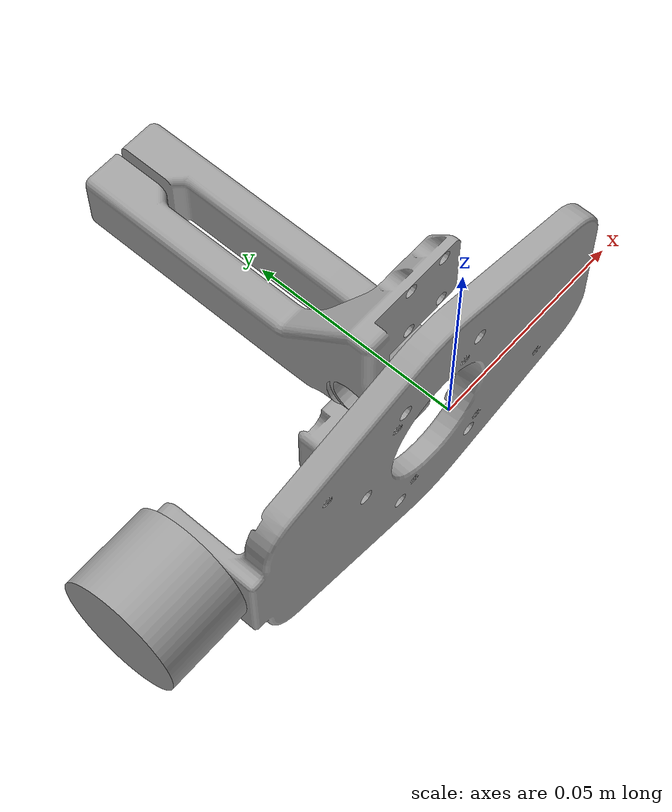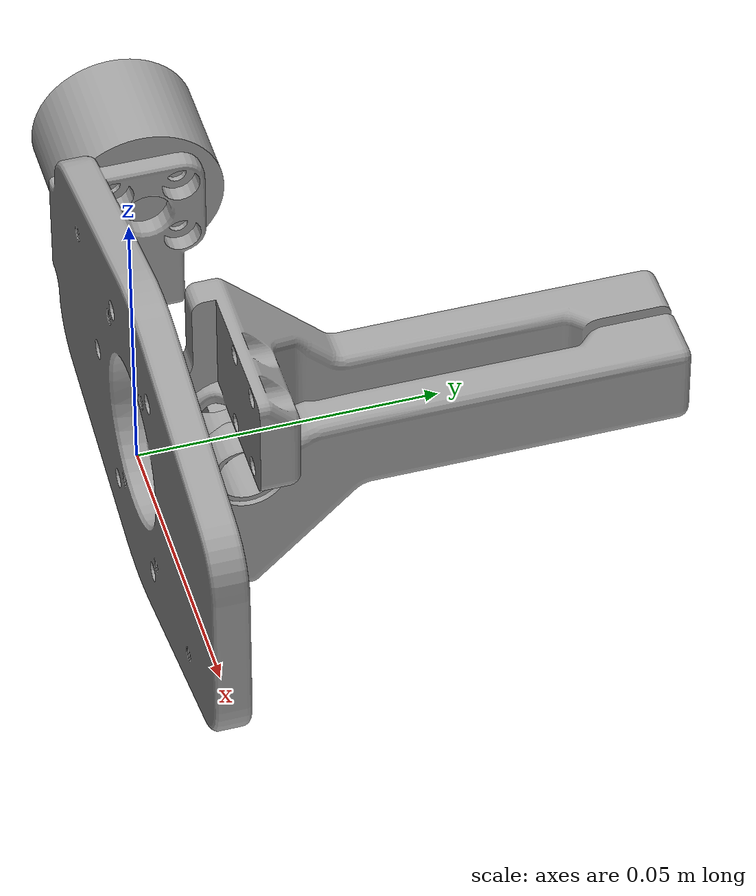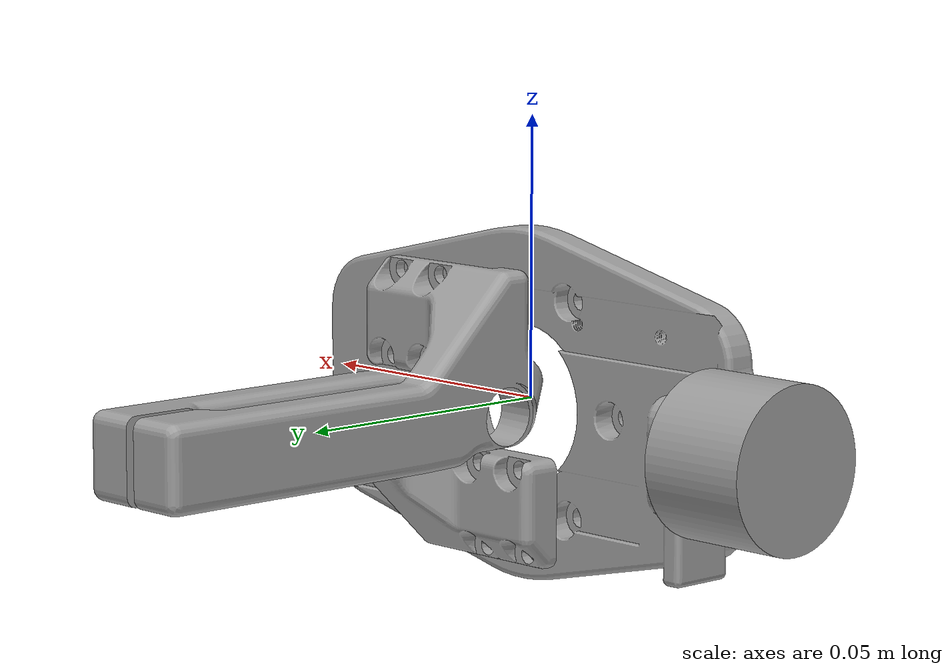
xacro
<?xml version="1.0" ?>
<robot name="grip_urdf1" xmlns:xacro="http://www.ros.org/wiki/xacro">

<xacro:include filename="$(find grip_urdf1_description)/urdf/materials.xacro" />
<xacro:include filename="$(find grip_urdf1_description)/urdf/grip_urdf1.trans" />
<xacro:include filename="$(find grip_urdf1_description)/urdf/grip_urdf1.gazebo" />
<xacro:arg name="tf_prefix" default=""/>
<link name="$(arg tf_prefix)/base_link">
  <inertial>
    <origin rpy="0 0 0" xyz="-0.006946610886831786 0.0035780166273227205 -0.0003164257368845329"/>
    <mass value="0.21004662945285396"/>
    <inertia ixx="5.5e-05" ixy="7e-06" ixz="-5e-06" iyy="0.000256" iyz="1e-06" izz="0.000206"/>
  </inertial>
  <visual>
    <origin rpy="0 0 0" xyz="0 0 0"/>
    <geometry>
      <mesh filename="package://grip_urdf1_description/meshes/base_link_grip_urdf1 v0_Body1_base_link.stl" scale="0.001 0.001 0.001"/>
    </geometry>
    <material name="Steel - Satin">
      <color rgba="0.6274509803921569 0.6274509803921569 0.6274509803921569 1.0"/>
    </material>
  </visual>
  <collision>
    <origin rpy="0 0 0" xyz="0 0 0"/>
    <geometry>
      <mesh filename="package://grip_urdf1_description/meshes/base_link.stl" scale="0.001 0.001 0.001"/>
    </geometry>
  </collision>
</link>

<link name="$(arg tf_prefix)/motor_1">
  <inertial>
    <origin rpy="0 0 0" xyz="-0.010000306616649128 3.469446951953614e-18 1.4668454062330035e-17"/>
    <mass value="0.09667308913626513"/>
    <inertia ixx="9e-06" ixy="0.0" ixz="0.0" iyy="8e-06" iyz="0.0" izz="8e-06"/>
  </inertial>
  <visual>
    <origin rpy="0 0 0" xyz="0.057167 -0.016 0.0"/>
    <geometry>
      <mesh filename="package://grip_urdf1_description/meshes/motor_1_grip_urdf1 v0_Body1_motor_1.stl" scale="0.001 0.001 0.001"/>
    </geometry>
    <material name="Steel - Satin">
      <color rgba="0.6274509803921569 0.6274509803921569 0.6274509803921569 1.0"/>
    </material>
  </visual>
  <collision>
    <origin rpy="0 0 0" xyz="0.057167 -0.016 0.0"/>
    <geometry>
      <mesh filename="package://grip_urdf1_description/meshes/motor_1.stl" scale="0.001 0.001 0.001"/>
    </geometry>
  </collision>
</link>

<link name="$(arg tf_prefix)/finger_1">
  <inertial>
    <origin rpy="0 0 0" xyz="0.0008908942564820792 0.0264560567515969 0.005010079496025799"/>
    <mass value="0.10777043072488268"/>
    <inertia ixx="7.2e-05" ixy="7e-06" ixz="-3e-06" iyy="1.2e-05" iyz="1.3e-05" izz="7e-05"/>
  </inertial>
  <visual>
    <origin rpy="0 0 0" xyz="0.005667 -0.016 0.0"/>
    <geometry>
      <mesh filename="package://grip_urdf1_description/meshes/finger_1_grip_urdf1 v0_Body1_finger_1.stl" scale="0.001 0.001 0.001"/>
    </geometry>
    <material name="Steel - Satin">
      <color rgba="0.6274509803921569 0.6274509803921569 0.6274509803921569 1.0"/>
    </material>
  </visual>
  <collision>
    <origin rpy="0 0 0" xyz="0.005667 -0.016 0.0"/>
    <geometry>
      <mesh filename="package://grip_urdf1_description/meshes/finger_1.stl" scale="0.001 0.001 0.001"/>
    </geometry>
  </collision>
</link>

<link name="$(arg tf_prefix)/finger_2">
  <inertial>
    <origin rpy="0 0 0" xyz="-0.0008915074897803414 0.0264560567515969 -0.005010079496025876"/>
    <mass value="0.10777043072488268"/>
    <inertia ixx="7.2e-05" ixy="-7e-06" ixz="-3e-06" iyy="1.2e-05" iyz="-1.3e-05" izz="7e-05"/>
  </inertial>
  <visual>
    <origin rpy="0 0 0" xyz="-0.003833 -0.016 0.0"/>
    <geometry>
      <mesh filename="package://grip_urdf1_description/meshes/finger_2_grip_urdf1 v0_Body1_finger_2.stl" scale="0.001 0.001 0.001"/>
    </geometry>
    <material name="Steel - Satin">
      <color rgba="0.6274509803921569 0.6274509803921569 0.6274509803921569 1.0"/>
    </material>
  </visual>
  <collision>
    <origin rpy="0 0 0" xyz="-0.003833 -0.016 0.0"/>
    <geometry>
      <mesh filename="package://grip_urdf1_description/meshes/finger_2.stl" scale="0.001 0.001 0.001"/>
    </geometry>
  </collision>
</link>

<joint name="Rigid1" type="fixed">
  <origin rpy="0 0 0" xyz="-0.057167 0.016 0.0"/>
  <parent link="$(arg tf_prefix)/base_link"/>
  <child link="$(arg tf_prefix)/motor_1"/>
</joint>

<joint name="Slider2" type="prismatic">
  <origin rpy="0 0 0" xyz="-0.005667 0.016 0.0"/>
  <parent link="$(arg tf_prefix)/base_link"/>
  <child link="$(arg tf_prefix)/finger_1"/>
  <axis xyz="1.0 0.0 -0.0"/>
  <limit effort="100" lower="-0.035" upper="0.0025" velocity="100"/>
</joint>

<joint name="Slider3" type="prismatic">
  <origin rpy="0 0 0" xyz="0.003833 0.016 0.0"/>
  <parent link="$(arg tf_prefix)/base_link"/>
  <child link="$(arg tf_prefix)/finger_2"/>
  <axis xyz="1.0 0.0 -0.0"/>
  <limit effort="100" lower="0.0" upper="0.0" velocity="100"/>
  <mimic joint="Slider2" multiplier="-1.0"/>
</joint>

</robot>

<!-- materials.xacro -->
<robot name="grip_urdf1" xmlns:xacro="http://www.ros.org/wiki/xacro" >
<material name="Steel - Satin">
  <color rgba="0.6274509803921569 0.6274509803921569 0.6274509803921569 1.0"/>
</material>
</robot>

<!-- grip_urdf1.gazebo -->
<robot name="grip_urdf1" xmlns:xacro="http://www.ros.org/wiki/xacro" >

<xacro:property name="body_color" value="Gazebo/Silver" />

<gazebo>
  <plugin filename="libgazebo_ros_control.so" name="control"/>
</gazebo>
<gazebo reference="base_link">
  <material>${body_color}</material>
  <mu1>0.2</mu1>
  <mu2>0.2</mu2>
  <selfCollide>true</selfCollide>
  <gravity>true</gravity>
</gazebo>

<gazebo reference="motor_1">
  <material>${body_color}</material>
  <mu1>0.2</mu1>
  <mu2>0.2</mu2>
  <selfCollide>true</selfCollide>
</gazebo>

<gazebo reference="finger_1">
  <material>${body_color}</material>
  <mu1>0.2</mu1>
  <mu2>0.2</mu2>
  <selfCollide>true</selfCollide>
</gazebo>

<gazebo reference="finger_2">
  <material>${body_color}</material>
  <mu1>0.2</mu1>
  <mu2>0.2</mu2>
  <selfCollide>true</selfCollide>
</gazebo>

</robot>
